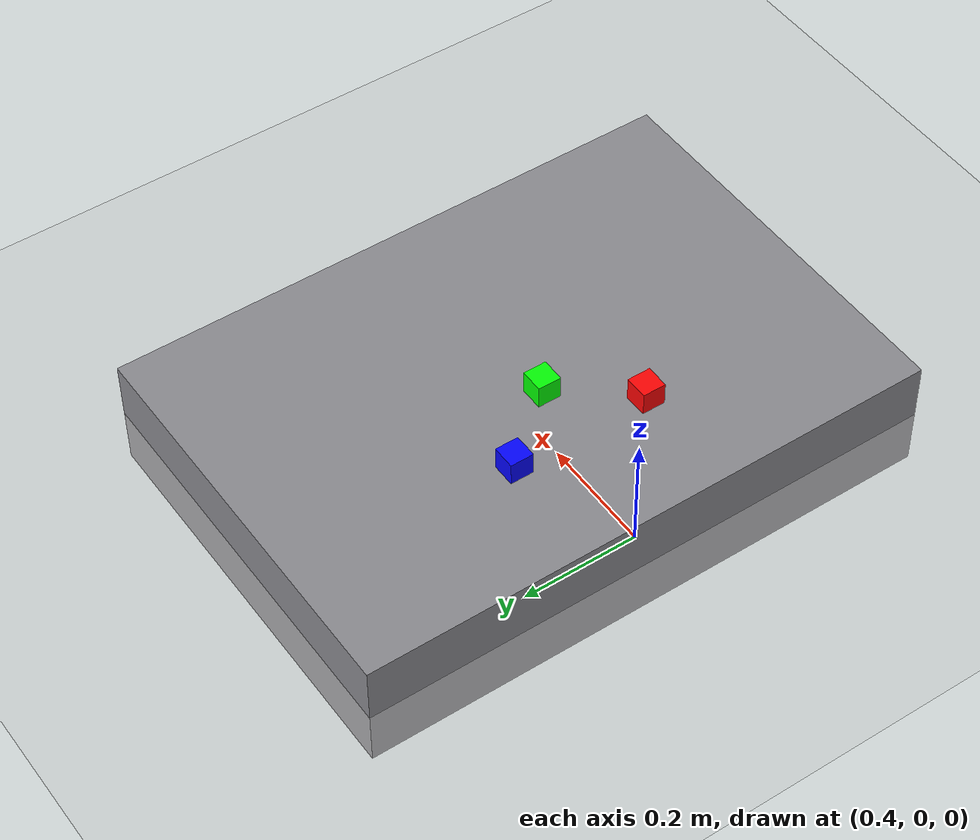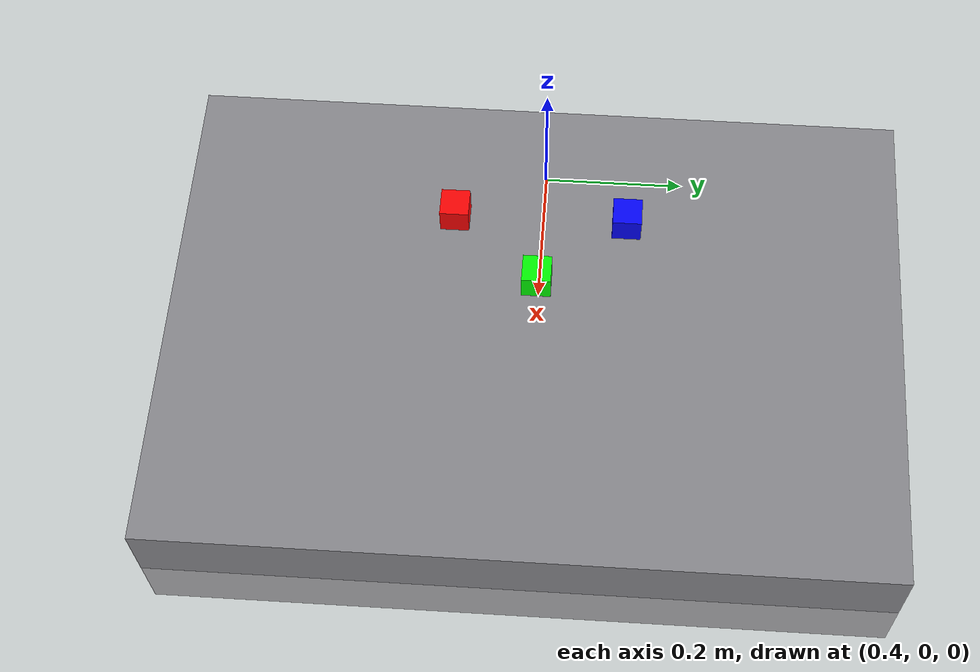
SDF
<?xml version='1.0' encoding='utf-8'?>
<sdf version="1.6">
  <world name="color_perception">
    <include>
      <uri>model://ground_plane</uri>
    </include>
    <include>
      <uri>model://sun</uri>
    </include>
    <model name="sorting_table">
      <static>true</static>
      <pose>0.70 0 0.0 0 0 0</pose>
      <link name="table_link">
        <collision name="collision">
          <geometry>
            <box>
              <size>0.70 1.00 0.20</size>
            </box>
          </geometry>
        </collision>
        <visual name="visual">
          <geometry>
            <box>
              <size>0.70 1.00 0.20</size>
            </box>
          </geometry>
          <material>
            <ambient>0.45 0.45 0.47 1</ambient>
            <diffuse>0.55 0.55 0.57 1</diffuse>
          </material>
        </visual>
      </link>
    </model>
    <model name="red_block">
      <pose>0.54 -0.12 0.120 0 0 0</pose>
      <link name="block_link">
        <gravity>true</gravity>
        <kinematic>false</kinematic>
        <inertial>
          <mass>0.04</mass>
          <inertia>
            <ixx>0.000011</ixx>
            <iyy>0.000011</iyy>
            <izz>0.000011</izz>
          </inertia>
        </inertial>
        <collision name="collision">
          <max_contacts>20</max_contacts>
          <geometry>
            <box>
              <size>0.04 0.04 0.04</size>
            </box>
          </geometry>
          <surface>
            <friction>
              <ode>
                <mu>20.0</mu>
                <mu2>20.0</mu2>
              </ode>
            </friction>
            <contact>
              <ode>
                <kp>1000000</kp>
                <kd>100</kd>
                <max_vel>0.01</max_vel>
                <min_depth>0.001</min_depth>
              </ode>
            </contact>
          </surface>
        </collision>
        <visual name="visual">
          <geometry>
            <box>
              <size>0.04 0.04 0.04</size>
            </box>
          </geometry>
          <material>
            <ambient>0.8 0.02 0.02 1</ambient>
            <diffuse>1 0.02 0.02 1</diffuse>
          </material>
        </visual>
      </link>
    </model>
    <model name="green_block">
      <pose>0.64 0 0.120 0 0 0</pose>
      <link name="block_link">
        <gravity>true</gravity>
        <kinematic>false</kinematic>
        <inertial>
          <mass>0.04</mass>
          <inertia>
            <ixx>0.000011</ixx>
            <iyy>0.000011</iyy>
            <izz>0.000011</izz>
          </inertia>
        </inertial>
        <collision name="collision">
          <max_contacts>20</max_contacts>
          <geometry>
            <box>
              <size>0.04 0.04 0.04</size>
            </box>
          </geometry>
          <surface>
            <friction>
              <ode>
                <mu>20.0</mu>
                <mu2>20.0</mu2>
              </ode>
            </friction>
            <contact>
              <ode>
                <kp>1000000</kp>
                <kd>100</kd>
                <max_vel>0.01</max_vel>
                <min_depth>0.001</min_depth>
              </ode>
            </contact>
          </surface>
        </collision>
        <visual name="visual">
          <geometry>
            <box>
              <size>0.04 0.04 0.04</size>
            </box>
          </geometry>
          <material>
            <ambient>0.02 0.8 0.02 1</ambient>
            <diffuse>0.02 1 0.02 1</diffuse>
          </material>
        </visual>
      </link>
    </model>
    <model name="blue_block">
      <pose>0.54 0.12 0.120 0 0 0</pose>
      <link name="block_link">
        <gravity>true</gravity>
        <kinematic>false</kinematic>
        <inertial>
          <mass>0.04</mass>
          <inertia>
            <ixx>0.000011</ixx>
            <iyy>0.000011</iyy>
            <izz>0.000011</izz>
          </inertia>
        </inertial>
        <collision name="collision">
          <max_contacts>20</max_contacts>
          <geometry>
            <box>
              <size>0.04 0.04 0.04</size>
            </box>
          </geometry>
          <surface>
            <friction>
              <ode>
                <mu>20.0</mu>
                <mu2>20.0</mu2>
              </ode>
            </friction>
            <contact>
              <ode>
                <kp>1000000</kp>
                <kd>100</kd>
                <max_vel>0.01</max_vel>
                <min_depth>0.001</min_depth>
              </ode>
            </contact>
          </surface>
        </collision>
        <visual name="visual">
          <geometry>
            <box>
              <size>0.04 0.04 0.04</size>
            </box>
          </geometry>
          <material>
            <ambient>0.02 0.02 0.8 1</ambient>
            <diffuse>0.02 0.02 1 1</diffuse>
          </material>
        </visual>
      </link>
    </model>
    <physics name="sorting_physics" type="ode">
      <max_step_size>0.001</max_step_size>
      <real_time_update_rate>1000</real_time_update_rate>
      <ode>
        <solver>
          <type>quick</type>
          <iters>150</iters>
          <sor>1.3</sor>
        </solver>
      </ode>
    </physics>
  </world>
</sdf>
